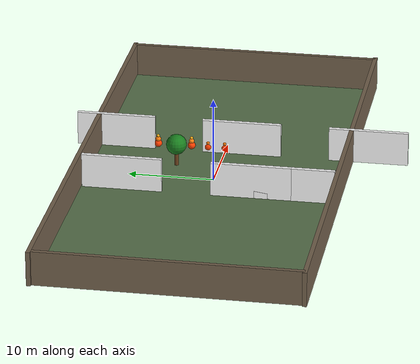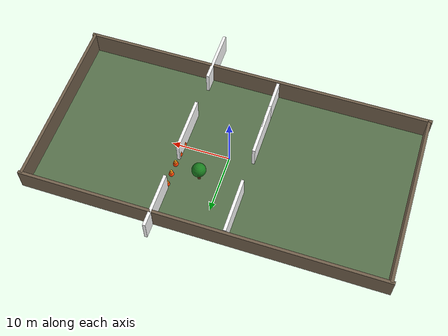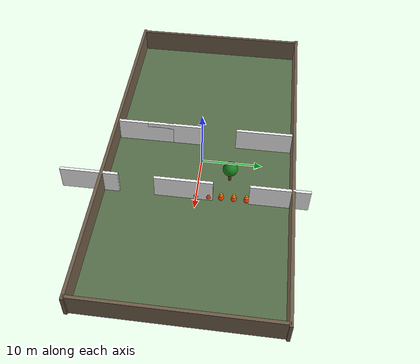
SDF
<?xml version="1.0"?>
<sdf version='1.8'>
  <world name="custom_world_1_fire">
    <!-- Lightweight world: solid-color geometry only (no PNG/PBR/Fuel meshes).
         Large transparent fire textures + software GL caused Gazebo to thrash
         textures continuously in the GUI. -->
    <light name="sun" type="directional">
      <cast_shadows>0</cast_shadows>
      <pose>0 0 100 0 -0 0</pose>
      <diffuse>0.8 0.8 0.8 1</diffuse>
      <specular>0.4 0.4 0.4 1</specular>
      <direction>-0.5 0.1 -0.9</direction>
    </light>
    <gravity>0 0 -9.81</gravity>
    <magnetic_field>6e-06 2.3e-05 -4.2e-05</magnetic_field>
    <atmosphere type="adiabatic"/>
    <physics name="default_physics" type="ignored">
      <max_step_size>0.01</max_step_size>
      <real_time_factor>1</real_time_factor>
      <real_time_update_rate>100</real_time_update_rate>
    </physics>
    <scene>
      <ambient>0.7 0.7 0.7 1</ambient>
      <background>0.6 0.8 1.0 1</background>
      <shadows>0</shadows>
      <grid>0</grid>
    </scene>

    <spherical_coordinates>
      <latitude_deg>0.0</latitude_deg>
      <longitude_deg>0.0</longitude_deg>
      <elevation>10.0</elevation>
      <heading_deg>0</heading_deg>
      <surface_model>EARTH_WGS84</surface_model>
    </spherical_coordinates>

    <include>
      <uri>model://flat_custom_ground_plane</uri>
      <name>flat_custom_ground_plane</name>
      <pose>0 0 0 0 0 0</pose>
    </include>

    <!-- Solid perimeter around the 60 x 30 m ground (X ±30, Y ±15).
         0.5 m thick boxes so gpu_lidar / SLAM see the map boundary. -->
    <include>
      <uri>model://map_perimeter</uri>
      <name>map_perimeter</name>
      <pose>0 0 0 0 0 0</pose>
    </include>

    <!-- Walls: model is an upright 9.32 x 0.5 x 4 m box. Yaw π/2 aligns
         the long axis with world Y so they block east/west travel. -->
    <include>
      <uri>model://forest_wall</uri>
      <name>forest_wall_1</name>
      <pose>-4 10 0 0 0 1.570796</pose>
    </include>

    <include>
      <uri>model://forest_wall</uri>
      <name>forest_wall_2</name>
      <pose>-4 -5 0 0 0 1.570796</pose>
    </include>

    <include>
      <uri>model://forest_wall</uri>
      <name>forest_wall_3</name>
      <pose>-4 -10 0 0 0 1.570796</pose>
    </include>

    <include>
      <uri>model://forest_wall</uri>
      <name>forest_wall_4</name>
      <pose>8 13 0 0 0 1.570796</pose>
    </include>

    <include>
      <uri>model://simple_fire</uri>
      <name>fire1</name>
      <pose>8 8 0 0 0 0</pose>
    </include>
    <include>
      <uri>model://simple_fire</uri>
      <name>fire2</name>
      <pose>8 6 0 0 0 0</pose>
    </include>
    <include>
      <uri>model://simple_fire</uri>
      <name>fire3</name>
      <pose>8 4 0 0 0 0</pose>
    </include>
    <include>
      <uri>model://simple_fire</uri>
      <name>fire4</name>
      <pose>8 2 0 0 0 0</pose>
    </include>
    <include>
      <uri>model://simple_fire</uri>
      <name>fire5</name>
      <pose>8 0 0 0 0 0</pose>
    </include>

    <!-- Leave a clear east-west corridor around y=0 so Nav2 can reach the
         far end of the 60 m ground (goal ~30, 0) without being sealed in. -->
    <include>
      <uri>model://forest_wall</uri>
      <name>forest_wall_5</name>
      <pose>8 -2 0 0 0 1.570796</pose>
    </include>

    <include>
      <uri>model://forest_wall</uri>
      <name>forest_wall_6</name>
      <pose>8 -17 0 0 0 1.570796</pose>
    </include>

    <!-- fire markers -->
    <!-- Fire markers (emissive spheres, no textures). Spawn Z ~0.4 is correct. -->

    <include>
      <uri>model://simple_tree</uri>
      <name>oak8</name>
      <pose>3.54698 5 0 0 0 0.1</pose>
    </include>

  </world>
</sdf>

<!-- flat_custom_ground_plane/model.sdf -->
<sdf version="1.7">
<model name="flat_custom_ground_plane">
    <static>true</static>
    <link name="link">
        <collision name="collision">
            <geometry>
            <box>
                <size>60 30 0.01</size>
            </box>
            </geometry>
        </collision>
        <visual name="visual">
            <cast_shadows>false</cast_shadows>
            <geometry>
            <box>
                <size>60 30 0.01</size>
            </box>
            </geometry>
            <material>
                <ambient>0.35 0.45 0.30 1</ambient>
                <diffuse>0.35 0.45 0.30 1</diffuse>
            </material>
        </visual>
    </link>
</model>
</sdf>

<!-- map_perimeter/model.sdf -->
<sdf version="1.7">
  <model name="map_perimeter">
    <static>true</static>

    <!-- West wall: x = -30, spans full Y -->
    <link name="west">
      <collision name="collision">
        <pose>0 0 2 0 0 0</pose>
        <geometry>
          <box>
            <size>0.5 30 4</size>
          </box>
        </geometry>
      </collision>
      <visual name="visual">
        <pose>0 0 2 0 0 0</pose>
        <cast_shadows>false</cast_shadows>
        <geometry>
          <box>
            <size>0.5 30 4</size>
          </box>
        </geometry>
        <material>
          <ambient>0.35 0.30 0.25 1</ambient>
          <diffuse>0.45 0.38 0.30 1</diffuse>
        </material>
      </visual>
      <pose>-30 0 0 0 0 0</pose>
    </link>

    <!-- East wall: x = +30, spans full Y -->
    <link name="east">
      <collision name="collision">
        <pose>0 0 2 0 0 0</pose>
        <geometry>
          <box>
            <size>0.5 30 4</size>
          </box>
        </geometry>
      </collision>
      <visual name="visual">
        <pose>0 0 2 0 0 0</pose>
        <cast_shadows>false</cast_shadows>
        <geometry>
          <box>
            <size>0.5 30 4</size>
          </box>
        </geometry>
        <material>
          <ambient>0.35 0.30 0.25 1</ambient>
          <diffuse>0.45 0.38 0.30 1</diffuse>
        </material>
      </visual>
      <pose>30 0 0 0 0 0</pose>
    </link>

    <!-- South wall: y = -15; 61 m long so corners seal against east/west -->
    <link name="south">
      <collision name="collision">
        <pose>0 0 2 0 0 0</pose>
        <geometry>
          <box>
            <size>61 0.5 4</size>
          </box>
        </geometry>
      </collision>
      <visual name="visual">
        <pose>0 0 2 0 0 0</pose>
        <cast_shadows>false</cast_shadows>
        <geometry>
          <box>
            <size>61 0.5 4</size>
          </box>
        </geometry>
        <material>
          <ambient>0.35 0.30 0.25 1</ambient>
          <diffuse>0.45 0.38 0.30 1</diffuse>
        </material>
      </visual>
      <pose>0 -15 0 0 0 0</pose>
    </link>

    <!-- North wall: y = +15 -->
    <link name="north">
      <collision name="collision">
        <pose>0 0 2 0 0 0</pose>
        <geometry>
          <box>
            <size>61 0.5 4</size>
          </box>
        </geometry>
      </collision>
      <visual name="visual">
        <pose>0 0 2 0 0 0</pose>
        <cast_shadows>false</cast_shadows>
        <geometry>
          <box>
            <size>61 0.5 4</size>
          </box>
        </geometry>
        <material>
          <ambient>0.35 0.30 0.25 1</ambient>
          <diffuse>0.45 0.38 0.30 1</diffuse>
        </material>
      </visual>
      <pose>0 15 0 0 0 0</pose>
    </link>
  </model>
</sdf>

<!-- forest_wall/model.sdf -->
<sdf version="1.7">

  <model name="forest_wall">
    <static>true</static>

    <link name="link">

      <collision name="collision">
        <pose>0 0 2 0 0 0</pose>
        <geometry>
          <box>
            <size>9.32 0.5 4</size>
          </box>
        </geometry>
      </collision>

      <visual name="visual">
        <pose>0 0 2 0 0 0</pose>
        <cast_shadows>false</cast_shadows>

        <geometry>
          <box>
            <size>9.32 0.5 4</size>
          </box>
        </geometry>

        <material>
          <ambient>1 1 1 1</ambient>
          <diffuse>1 1 1 1</diffuse>

          <pbr>
            <metal>
              <albedo_map>materials/textures/forest_wall.png</albedo_map>
              <roughness>1.0</roughness>
              <metalness>0.0</metalness>
            </metal>
          </pbr>
        </material>

      </visual>

    </link>

  </model>

</sdf>

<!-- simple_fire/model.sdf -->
<sdf version="1.7">
  <model name="simple_fire">
    <static>true</static>
    <link name="link">
      <temperature>900</temperature>
      <!-- Tall thin collision so lidar can see the fire column -->
      <collision name="collision">
        <pose>0 0 1.0 0 0 0</pose>
        <geometry>
          <cylinder>
            <radius>0.35</radius>
            <length>2.0</length>
          </cylinder>
        </geometry>
      </collision>
      <visual name="flame_base">
        <pose>0 0 0.6 0 0 0</pose>
        <cast_shadows>false</cast_shadows>
        <geometry>
          <sphere>
            <radius>0.45</radius>
          </sphere>
        </geometry>
        <material>
          <ambient>1.0 0.15 0.0 1</ambient>
          <diffuse>1.0 0.25 0.0 1</diffuse>
          <emissive>0.9 0.15 0.0 1</emissive>
        </material>
      </visual>
      <visual name="flame_mid">
        <pose>0 0 1.15 0 0 0</pose>
        <cast_shadows>false</cast_shadows>
        <geometry>
          <sphere>
            <radius>0.32</radius>
          </sphere>
        </geometry>
        <material>
          <ambient>1.0 0.45 0.0 1</ambient>
          <diffuse>1.0 0.5 0.05 1</diffuse>
          <emissive>1.0 0.35 0.0 1</emissive>
        </material>
      </visual>
      <visual name="flame_tip">
        <pose>0 0 1.55 0 0 0</pose>
        <cast_shadows>false</cast_shadows>
        <geometry>
          <sphere>
            <radius>0.18</radius>
          </sphere>
        </geometry>
        <material>
          <ambient>1.0 0.75 0.1 1</ambient>
          <diffuse>1.0 0.7 0.1 1</diffuse>
          <emissive>1.0 0.55 0.05 1</emissive>
        </material>
      </visual>
    </link>
  </model>
</sdf>

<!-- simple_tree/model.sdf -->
<sdf version="1.7">
  <model name="simple_tree">
    <static>true</static>
    <link name="link">
      <collision name="trunk">
        <pose>0 0 1.0 0 0 0</pose>
        <geometry>
          <cylinder>
            <radius>0.25</radius>
            <length>2.0</length>
          </cylinder>
        </geometry>
      </collision>
      <collision name="canopy">
        <pose>0 0 2.6 0 0 0</pose>
        <geometry>
          <sphere>
            <radius>1.2</radius>
          </sphere>
        </geometry>
      </collision>
      <visual name="trunk">
        <pose>0 0 1.0 0 0 0</pose>
        <cast_shadows>false</cast_shadows>
        <geometry>
          <cylinder>
            <radius>0.25</radius>
            <length>2.0</length>
          </cylinder>
        </geometry>
        <material>
          <ambient>0.30 0.18 0.08 1</ambient>
          <diffuse>0.40 0.24 0.10 1</diffuse>
        </material>
      </visual>
      <visual name="canopy">
        <pose>0 0 2.6 0 0 0</pose>
        <cast_shadows>false</cast_shadows>
        <geometry>
          <sphere>
            <radius>1.2</radius>
          </sphere>
        </geometry>
        <material>
          <ambient>0.05 0.35 0.08 1</ambient>
          <diffuse>0.10 0.50 0.12 1</diffuse>
        </material>
      </visual>
    </link>
  </model>
</sdf>
